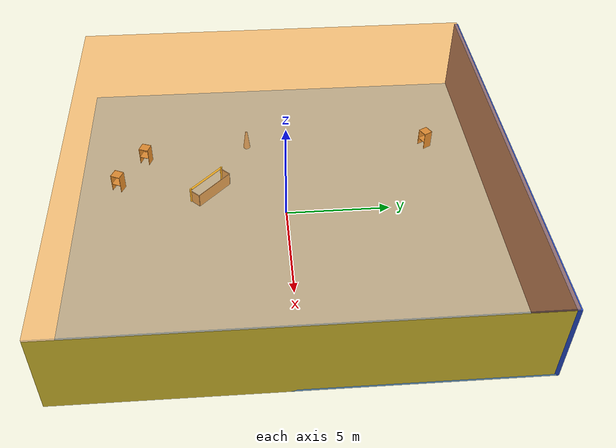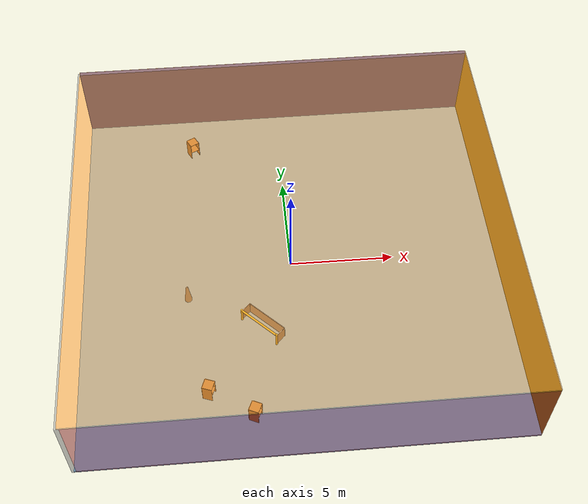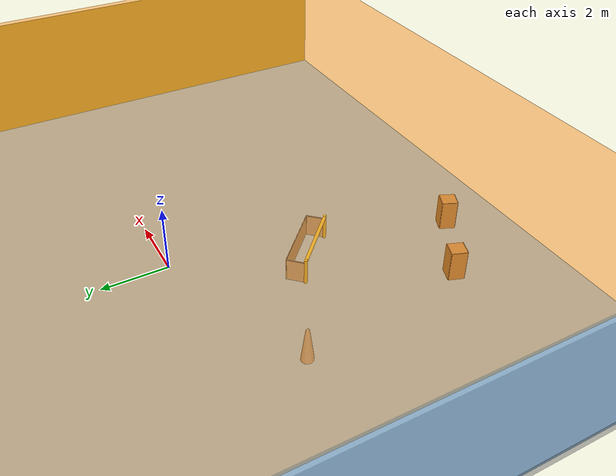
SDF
<sdf version="1.4">
 <world name="default">
  <physics type="ode">
   <max_step_size>0.001</max_step_size>
   <real_time_factor>1</real_time_factor>
   <real_time_update_rate>1000</real_time_update_rate>
   <gravity>0 0 -9.8</gravity>
  </physics>
  <scene><ambient>0.4 0.4 0.4 1</ambient><background>0.7 0.7 0.7 1</background><shadows>1</shadows></scene>
  <model name="Surrounding">
   <static>1</static>
   <link name="Ceiling">
    <collision name="Ceiling_Collision"><geometry><box><size>20 20 0.1</size></box></geometry></collision>
    <visual name="Ceiling_Visual">
     <geometry><box><size>20 20 0.1</size></box></geometry>
     <material>
      <script>
       <uri>file://media/materials/scripts/gazebo.material</uri>
       <name>Gazebo/OrangeTransparent</name>
      </script>
     </material>
    </visual>
    <pose>0 0 4.05 0 0 0</pose>
   </link>
   <link name="Wall_South">
    <collision name="Wall_South_Collision">
     <geometry><box><size>20 0 4</size></box></geometry>
     <pose>0 0 2 0 -0 0</pose>
    </collision>
    <visual name="Wall_South_Visual">
     <pose>0 0 2 0 -0 0</pose>
     <geometry><box><size>20 0 4</size></box></geometry>
     <material>
      <script><uri>file://media/materials/scripts/gazebo.material</uri><name>Gazebo/RedTransparent</name></script>
     </material>
    </visual>
    <velocity_decay><linear>0</linear><angular>0</angular></velocity_decay>
    <pose>0 -10 0 0 -0 0</pose>
   </link>
   <link name="Wall_East">
    <collision name="Wall_21_Collision">
     <geometry><box><size>20 0 4</size></box></geometry>
     <pose>0 0 2 0 -0 0</pose>
    </collision>
    <visual name="Wall_21_Visual">
     <pose>0 0 2 0 -0 0</pose>
     <geometry><box><size>20 0 4</size></box></geometry>
     <material>
      <script><uri>file://media/materials/scripts/gazebo.material</uri><name>Gazebo/ZincYellow</name></script>
     </material>
    </visual>
    <velocity_decay><linear>0</linear><angular>0</angular></velocity_decay>
    <pose>10 0 0 0 -0 1.5708</pose>
   </link>
   <link name="Wall_North">
    <collision name="Wall_22_Collision">
     <geometry><box><size>20 0.2 4</size></box></geometry>
     <pose>0 0 2 0 -0 0</pose>
    </collision>
    <visual name="Wall_22_Visual">
     <pose>0 0 2 0 -0 0</pose>
     <geometry><box><size>20 0.2 4</size></box></geometry>
     <material>
      <script><uri>file://media/materials/scripts/gazebo.material</uri><name>Gazebo/BlueGlow</name></script>
     </material>
    </visual>
    <velocity_decay><linear>0</linear><angular>0</angular></velocity_decay>
    <pose>0 10 0 0 -0 0</pose>
   </link>
   <link name="Wall_West">
    <collision name="Wall_23_Collision">
     <geometry><box><size>20 0.2 4</size></box></geometry>
     <pose>0 0 2 0 -0 0</pose>
    </collision>
    <visual name="Wall_23_Visual">
     <pose>0 0 2 0 -0 0</pose>
     <geometry><box><size>20 0.2 4</size></box></geometry>
     <material>
      <script><uri>file://media/materials/scripts/gazebo.material</uri><name>Gazebo/GreyTransparent</name></script>
     </material>
    </visual>
    <velocity_decay><linear>0</linear><angular>0</angular></velocity_decay>
    <pose>-10 0 0 0 0 -1.5708</pose>
   </link>
   <link name="Ground_link">
    <collision name="collision">
     <pose>0 0 .05 0 -0 0</pose>
     <geometry><box><size>20 20 0.1</size></box></geometry>
    </collision>
    <visual name="visual">
     <pose>0 0 .05 0 -0 0</pose>
     <geometry><box><size>20 20 0.1</size></box></geometry>
     <material>
      <script><uri>file://media/materials/scripts/gazebo.material</uri><name>Gazebo/SkyBlue</name></script>
     </material>
    </visual>
   </link>
   <static>1</static>
  </model>
  <spherical_coordinates>
   <surface_model>EARTH_WGS84</surface_model>
   <latitude_deg>0</latitude_deg>
   <longitude_deg>0</longitude_deg>
   <elevation>0</elevation>
   <heading_deg>0</heading_deg>
  </spherical_coordinates>
  <light name="lightball_0" type="diffuse">
   <diffuse>0.8 0.8 0.8 1</diffuse>
   <specular>0.2 0.2 0.2 1</specular>
   <attenuation>
    <range>100</range>
    <constant>0.7</constant>
    <linear>0.01</linear>
    <quadratic>0.001</quadratic>
   </attenuation>
   <direction>-0.5 0.1 -0.9</direction>
   <pose>4.85508233554 -2.30872115483 1.34418255619 0 0 0</pose>
  </light>
  <light name="lightball_1" type="diffuse">
   <diffuse>0.8 0.8 0.8 1</diffuse>
   <specular>0.2 0.2 0.2 1</specular>
   <attenuation>
    <range>100</range>
    <constant>0.7</constant>
    <linear>0.01</linear>
    <quadratic>0.001</quadratic>
   </attenuation>
   <direction>-0.5 0.1 -0.9</direction>
   <pose>-7.43084685134 -8.69358355235 0.987483334948 0 0 0</pose>
  </light>
  <light name="lightball_2" type="diffuse">
   <diffuse>0.8 0.8 0.8 1</diffuse>
   <specular>0.2 0.2 0.2 1</specular>
   <attenuation>
    <range>100</range>
    <constant>0.7</constant>
    <linear>0.01</linear>
    <quadratic>0.001</quadratic>
   </attenuation>
   <direction>-0.5 0.1 -0.9</direction>
   <pose>-5.48361817068 -6.02608239842 1.92953228803 0 0 0</pose>
  </light>
  <light name="lightball_3" type="diffuse">
   <diffuse>0.8 0.8 0.8 1</diffuse>
   <specular>0.2 0.2 0.2 1</specular>
   <attenuation>
    <range>100</range>
    <constant>0.7</constant>
    <linear>0.01</linear>
    <quadratic>0.001</quadratic>
   </attenuation>
   <direction>-0.5 0.1 -0.9</direction>
   <pose>-0.407492767297 4.29770444578 2.99994775549 0 0 0</pose>
  </light>
  <light name="lightball_4" type="diffuse">
   <diffuse>0.8 0.8 0.8 1</diffuse>
   <specular>0.2 0.2 0.2 1</specular>
   <attenuation>
    <range>100</range>
    <constant>0.7</constant>
    <linear>0.01</linear>
    <quadratic>0.001</quadratic>
   </attenuation>
   <direction>-0.5 0.1 -0.9</direction>
   <pose>1.89245537891 0.767149685757 3.14075856579 0 0 0</pose>
  </light>
  <light name="lightball_5" type="diffuse">
   <diffuse>0.8 0.8 0.8 1</diffuse>
   <specular>0.2 0.2 0.2 1</specular>
   <attenuation>
    <range>100</range>
    <constant>0.7</constant>
    <linear>0.01</linear>
    <quadratic>0.001</quadratic>
   </attenuation>
   <direction>-0.5 0.1 -0.9</direction>
   <pose>-1.0637387579 4.33298919966 3.32790252441 0 0 0</pose>
  </light>
  <light name="lightball_6" type="diffuse">
   <diffuse>0.8 0.8 0.8 1</diffuse>
   <specular>0.2 0.2 0.2 1</specular>
   <attenuation>
    <range>100</range>
    <constant>0.7</constant>
    <linear>0.01</linear>
    <quadratic>0.001</quadratic>
   </attenuation>
   <direction>-0.5 0.1 -0.9</direction>
   <pose>3.36993636416 1.8877314972 1.36063741009 0 0 0</pose>
  </light>
  <light name="lightball_7" type="diffuse">
   <diffuse>0.8 0.8 0.8 1</diffuse>
   <specular>0.2 0.2 0.2 1</specular>
   <attenuation>
    <range>100</range>
    <constant>0.7</constant>
    <linear>0.01</linear>
    <quadratic>0.001</quadratic>
   </attenuation>
   <direction>-0.5 0.1 -0.9</direction>
   <pose>3.10407149435 8.27540029549 2.76821624139 0 0 0</pose>
  </light>
  <light name="lightball_8" type="diffuse">
   <diffuse>0.8 0.8 0.8 1</diffuse>
   <specular>0.2 0.2 0.2 1</specular>
   <attenuation>
    <range>100</range>
    <constant>0.7</constant>
    <linear>0.01</linear>
    <quadratic>0.001</quadratic>
   </attenuation>
   <direction>-0.5 0.1 -0.9</direction>
   <pose>-8.65423183745 1.41857196577 1.23715831416 0 0 0</pose>
  </light>
  <light name="lightball_9" type="diffuse">
   <diffuse>0.8 0.8 0.8 1</diffuse>
   <specular>0.2 0.2 0.2 1</specular>
   <attenuation>
    <range>100</range>
    <constant>0.7</constant>
    <linear>0.01</linear>
    <quadratic>0.001</quadratic>
   </attenuation>
   <direction>-0.5 0.1 -0.9</direction>
   <pose>4.53449700938 4.26876367043 0.586937899735 0 0 0</pose>
  </light>
  <include><uri>model://cabinet</uri><pose>-4.19054314455 -6.8730807464 0 0 0 2.79126671312</pose></include>
  <include>
   <uri>model://construction_cone</uri>
   <pose>-5.00728787031 -1.71821653618 0 0 0 0.717840693635</pose>
  </include>
  <include><uri>model://cabinet</uri><pose>-4.52405319272 7.56223835712 0 0 0 2.06478781928</pose></include>
  <include><uri>model://cabinet</uri><pose>-2.21087330194 -8.10717645788 0 0 0 2.7202182085</pose></include>
  <include>
   <uri>model://robocup_3Dsim_goal</uri>
   <pose>-1.77744799815 -3.78741085061 0 0 0 0.796237932738</pose>
  </include>
 </world>
</sdf>

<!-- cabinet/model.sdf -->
<sdf version="1.5">
  <model name="cabinet">
    <static>true</static>
    <link name="cabinet_bottom_plate">
      <inertial>
        <pose>0 0 -1 0 0 0</pose>
        <inertia>
          <ixx>2.050000</ixx>
          <ixy>0</ixy>
          <ixz>0</ixz>
          <iyy>2.050000</iyy>
          <iyz>0</iyz>
          <izz>2.050000</izz>
        </inertia>
        <mass>25.000000</mass>
      </inertial>
      <collision name="cabinet_bottom_plate_geom">
        <pose>0 0 0.010000 0 0 0</pose>
        <geometry>
          <box>
            <size>0.450000 0.450000 0.020000</size>
          </box>
        </geometry>
      </collision>
      <visual name="cabinet_bottom_plate_geom_visual">
        <pose>0 0 0.010000 0 0 0</pose>
        <geometry>
          <box>
            <size>0.450000 0.450000 0.020000</size>
          </box>
        </geometry>
        <material>
          <script>
            <uri>model://media/materials/scripts/gazebo.material</uri>
            <name>Gazebo/Wood</name>
          </script>
        </material>
      </visual>
      <collision name="cabinet_bottom_plate_geom_cabinet_back_plate">
        <pose>0.235000 0 0.510000 0 0 0</pose>
        <geometry>
          <box>
            <size>0.020000 0.450000 1.020000</size>
          </box>
        </geometry>
      </collision>
      <visual name="cabinet_bottom_plate_geom_cabinet_back_plate_visual">
        <pose>0.235000 0 0.510000 0 0 0</pose>
        <geometry>
          <box>
            <size>0.020000 0.450000 1.020000</size>
          </box>
        </geometry>
        <material>
          <script>
            <uri>model://media/materials/scripts/gazebo.material</uri>
            <name>Gazebo/Wood</name>
          </script>
        </material>
      </visual>
      <collision name="cabinet_bottom_plate_geom_cabinet_left_plate">
        <pose>0 0.235000 0.510000 0 0 0</pose>
        <geometry>
          <box>
            <size>0.450000 0.020000 1.020000</size>
          </box>
        </geometry>
      </collision>
      <visual name="cabinet_bottom_plate_geom_cabinet_left_plate_visual">
        <pose>0 0.235000 0.510000 0 0 0</pose>
        <geometry>
          <box>
            <size>0.450000 0.020000 1.020000</size>
          </box>
        </geometry>
        <material>
          <script>
            <uri>model://media/materials/scripts/gazebo.material</uri>
            <name>Gazebo/Wood</name>
          </script>
        </material>
      </visual>
      <collision name="cabinet_bottom_plate_geom_cabinet_middle_plate">
        <pose>0 0 0.510000 0 0 0</pose>
        <geometry>
          <box>
            <size>0.450000 0.450000 0.020000</size>
          </box>
        </geometry>
      </collision>
      <visual name="cabinet_bottom_plate_geom_cabinet_middle_plate_visual">
        <pose>0 0 0.510000 0 0 0</pose>
        <geometry>
          <box>
            <size>0.450000 0.450000 0.020000</size>
          </box>
        </geometry>
        <material>
          <script>
            <uri>model://media/materials/scripts/gazebo.material</uri>
            <name>Gazebo/Wood</name>
          </script>
        </material>
      </visual>
      <collision name="cabinet_bottom_plate_geom_cabinet_right_plate">
        <pose>0 -0.235000 0.510000 0 0 0</pose>
        <geometry>
          <box>
            <size>0.450000 0.020000 1.020000</size>
          </box>
        </geometry>
      </collision>
      <visual name="cabinet_bottom_plate_geom_cabinet_right_plate_visual">
        <pose>0 -0.235000 0.510000 0 0 0</pose>
        <geometry>
          <box>
            <size>0.450000 0.020000 1.020000</size>
          </box>
        </geometry>
        <material>
          <script>
            <uri>model://media/materials/scripts/gazebo.material</uri>
            <name>Gazebo/Wood</name>
          </script>
        </material>
      </visual>
      <collision name="cabinet_bottom_plate_geom_cabinet_top_plate">
        <pose>0 0 1.010000 0 0 0</pose>
        <geometry>
          <box>
            <size>0.450000 0.450000 0.020000</size>
          </box>
        </geometry>
      </collision>
      <visual name="cabinet_bottom_plate_geom_cabinet_top_plate_visual">
        <pose>0 0 1.010000 0 0 0</pose>
        <geometry>
          <box>
            <size>0.450000 0.450000 0.020000</size>
          </box>
        </geometry>
        <material>
          <script>
            <uri>model://media/materials/scripts/gazebo.material</uri>
            <name>Gazebo/Wood</name>
          </script>
        </material>
      </visual>
    </link>
  </model>
</sdf>

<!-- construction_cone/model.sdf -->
<sdf version="1.5">
  <model name="Construction Cone">
    <link name="link">
      <collision name="collision">
        <geometry>
          <mesh>
            <scale>10 10 10</scale>
            <uri>file://isr-testbed/construction_cone/meshes/construction_cone.dae</uri>
          </mesh>
        </geometry>
      </collision>
      <visual name="visual">
        <geometry>
          <mesh>
            <scale>10 10 10</scale>
            <uri>file://isr-testbed/construction_cone/meshes/construction_cone.dae</uri>
          </mesh>
        </geometry>
      </visual>
    </link>
  </model>
</sdf>

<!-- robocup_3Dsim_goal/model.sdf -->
<sdf version="1.5">
  <model name="robocup_3d_goal">
    <static>true</static>
    <link name="left_post">
      <pose>0 1.05 0.45 0 0 0</pose>
      <collision name="collision">
        <geometry>
          <cylinder>
            <radius>0.05</radius>
            <length>0.9</length>
          </cylinder>
        </geometry>
      </collision>
      <visual name="visual">
        <geometry>
          <cylinder>
            <radius>0.05</radius>
            <length>0.9</length>
          </cylinder>
        </geometry>
        <material>
          <script>
            <uri>file://media/materials/scripts/gazebo.material</uri>
            <name>Gazebo/ZincYellow</name>
          </script>
        </material>
      </visual>
    </link>
    <link name="left_support_horiz_lower">
      <pose>0.30 1.05 0.01 0 0 0</pose>
      <collision name="collision">
        <geometry>
          <box>
            <size>0.50 0.02 0.02</size>
          </box>
        </geometry>
      </collision>
      <visual name="visual">
        <geometry>
          <box>
            <size>0.50 0.02 0.02</size>
          </box>
        </geometry>
        <material>
          <script>
            <uri>file://media/materials/scripts/gazebo.material</uri>
            <name>Gazebo/White</name>
          </script>
        </material>
      </visual>
    </link>
    <link name="left_support_horiz_upper">
      <pose>0.30 1.05 0.79 0 0 0</pose>
      <collision name="collision">
        <geometry>
          <box>
            <size>0.50 0.02 0.02</size>
          </box>
        </geometry>
      </collision>
      <visual name="visual">
        <geometry>
          <box>
            <size>0.50 0.02 0.02</size>
          </box>
        </geometry>
        <material>
          <script>
            <uri>file://media/materials/scripts/gazebo.material</uri>
            <name>Gazebo/White</name>
          </script>
        </material>
      </visual>
    </link>
    <link name="left_support_vertical">
      <pose>0.56 1.05 0.4 0 1.5708 0</pose>
      <collision name="collision">
        <geometry>
          <box>
            <size>0.80 0.02 0.02</size>
          </box>
        </geometry>
      </collision>
      <visual name="visual">
        <geometry>
          <box>
            <size>0.80 0.02 0.02</size>
          </box>
        </geometry>
        <material>
          <script>
            <uri>file://media/materials/scripts/gazebo.material</uri>
            <name>Gazebo/White</name>
          </script>
        </material>
      </visual>
    </link>
    <link name="right_support_horiz_lower">
      <pose>0.30 -1.05 0.01 0 0 0</pose>
      <collision name="collision">
        <geometry>
          <box>
            <size>0.50 0.02 0.02</size>
          </box>
        </geometry>
      </collision>
      <visual name="visual">
        <geometry>
          <box>
            <size>0.50 0.02 0.02</size>
          </box>
        </geometry>
        <material>
          <script>
            <uri>file://media/materials/scripts/gazebo.material</uri>
            <name>Gazebo/White</name>
          </script>
        </material>
      </visual>
    </link>
    <link name="right_support_horiz_upper">
      <pose>0.30 -1.05 0.79 0 0 0</pose>
      <collision name="collision">
        <geometry>
          <box>
            <size>0.50 0.02 0.02</size>
          </box>
        </geometry>
      </collision>
      <visual name="visual">
        <geometry>
          <box>
            <size>0.50 0.02 0.02</size>
          </box>
        </geometry>
        <material>
          <script>
            <uri>file://media/materials/scripts/gazebo.material</uri>
            <name>Gazebo/White</name>
          </script>
        </material>
      </visual>
    </link>
    <link name="right_support_vertical">
      <pose>0.56 -1.05 0.4 0 1.5708 0</pose>
      <collision name="collision">
        <geometry>
          <box>
            <size>0.80 0.02 0.02</size>
          </box>
        </geometry>
      </collision>
      <visual name="visual">
        <geometry>
          <box>
            <size>0.80 0.02 0.02</size>
          </box>
        </geometry>
        <material>
          <script>
            <uri>file://media/materials/scripts/gazebo.material</uri>
            <name>Gazebo/White</name>
          </script>
        </material>
      </visual>
    </link>
    <link name="center_support_horiz_lower">
      <pose>0.56 0 0.01 0 1.5708 0</pose>
      <collision name="collision">
        <geometry>
          <box>
            <size>0.02 2.08 0.02</size>
          </box>
        </geometry>
      </collision>
      <visual name="visual">
        <geometry>
          <box>
            <size>0.02 2.08 0.02</size>
          </box>
        </geometry>
        <material>
          <script>
            <uri>file://media/materials/scripts/gazebo.material</uri>
            <name>Gazebo/White</name>
          </script>
        </material>
      </visual>
    </link>
    <link name="center_support_horiz_upper">
      <pose>0.56 0 0.79 0 1.5708 0</pose>
      <collision name="collision">
        <geometry>
          <box>
            <size>0.02 2.08 0.02</size>
          </box>
        </geometry>
      </collision>
      <visual name="visual">
        <geometry>
          <box>
            <size>0.02 2.08 0.02</size>
          </box>
        </geometry>
        <material>
          <script>
            <uri>file://media/materials/scripts/gazebo.material</uri>
            <name>Gazebo/White</name>
          </script>
        </material>
      </visual>
    </link>
    <link name="right_post">
      <pose>0 -1.05 0.45 0 0 0</pose>
      <collision name="collision">
        <geometry>
          <cylinder>
            <radius>0.05</radius>
            <length>0.9</length>
          </cylinder>
        </geometry>
      </collision>
      <visual name="visual">
        <geometry>
          <cylinder>
            <radius>0.05</radius>
            <length>0.9</length>
          </cylinder>
        </geometry>
        <material>
          <script>
            <uri>file://media/materials/scripts/gazebo.material</uri>
            <name>Gazebo/ZincYellow</name>
          </script>
        </material>
      </visual>
    </link>
    <link name="crossbar">
      <pose>0 0 0.85 1.57 1.57 0</pose>
      <collision name="collision">
        <geometry>
          <cylinder>
            <radius>0.05</radius>
            <length>2.0</length>
          </cylinder>
        </geometry>
      </collision>
      <visual name="visual">
        <geometry>
          <cylinder>
            <radius>0.05</radius>
            <length>2.0</length>
          </cylinder>
        </geometry>
        <material>
          <script>
            <uri>file://media/materials/scripts/gazebo.material</uri>
            <name>Gazebo/ZincYellow</name>
          </script>
        </material>
      </visual>
    </link>
    <link name="center_net">
      <pose>0.56 0 0.40 0 0 0</pose>
      <collision name="collision">
        <geometry>
          <box>
            <size>0.01 2.1 0.80</size>
          </box>
        </geometry>
      </collision>
      <visual name="visual">
        <geometry>
          <box>
            <size>0.01 2.1 0.80</size>
          </box>
        </geometry>
        <material>
          <script>
            <uri>model://../model_source/models/robocup09_spl_field/materials/scripts/</uri>
            <uri>model://../model_source/models/robocup09_spl_field/materials/textures/</uri>
            <name>RoboCup/Net</name>
          </script>
        </material>
      </visual>
    </link>
    <link name="left_net">
      <pose>0.30 1.05 0.40 0 0 0</pose>
      <collision name="collision">
        <geometry>
          <box>
            <size>0.50 0.01 0.76</size>
          </box>
        </geometry>
      </collision>
      <visual name="visual">
        <geometry>
          <box>
            <size>0.50 0.01 0.76</size>
          </box>
        </geometry>
        <material>
          <script>
            <uri>model://../model_source/models/robocup09_spl_field/materials/scripts/</uri>
            <uri>model://../model_source/models/robocup09_spl_field/materials/textures/</uri>
            <name>RoboCup/Net</name>
          </script>
        </material>
      </visual>
    </link>
    <link name="right_net">
      <pose>0.30 -1.05 0.40 0 0 0</pose>
      <collision name="collision">
        <geometry>
          <box>
            <size>0.50 0.01 0.76</size>
          </box>
        </geometry>
      </collision>
      <visual name="visual">
        <geometry>
          <box>
            <size>0.50 0.01 0.76</size>
          </box>
        </geometry>
        <material>
          <script>
            <uri>model://../model_source/models/robocup09_spl_field/materials/scripts/</uri>
            <uri>model://../model_source/models/robocup09_spl_field/materials/textures/</uri>
            <name>RoboCup/Net</name>
          </script>
        </material>
      </visual>
    </link>
  </model>
</sdf>
